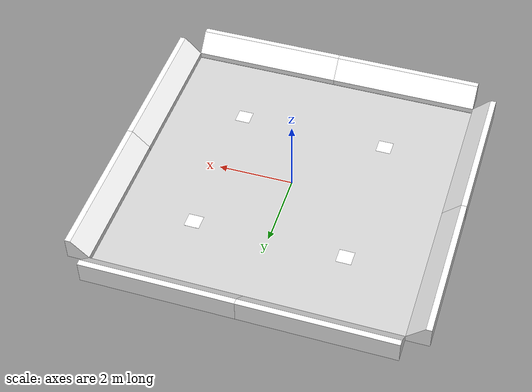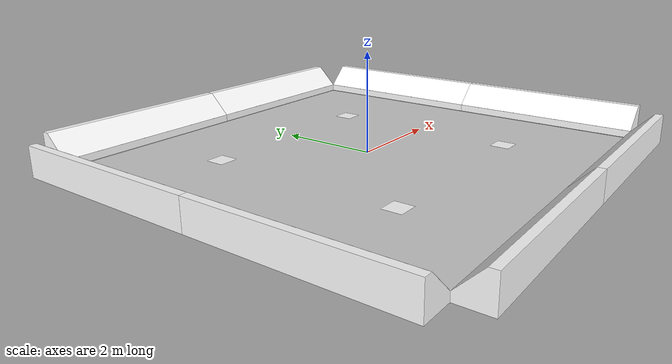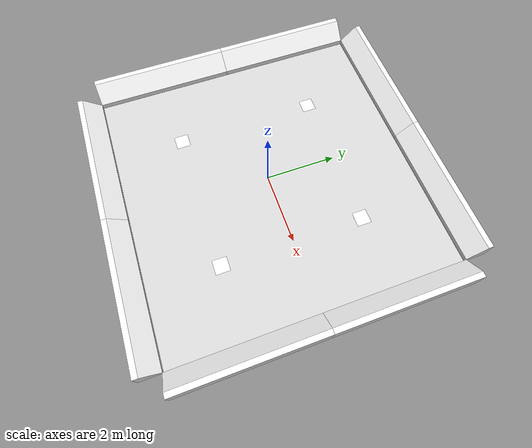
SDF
<sdf version="1.4">
  <world name="default">

    <physics name="1ms" type="ignored">
      <max_step_size>0.001</max_step_size>
      <real_time_factor>1.0</real_time_factor>
    </physics>
    <plugin
      filename="gz-sim-physics-system"
      name="gz::sim::systems::Physics">
    </plugin>
    <plugin
      filename="gz-sim-user-commands-system"
      name="gz::sim::systems::UserCommands">
    </plugin>
    <plugin
      filename="gz-sim-scene-broadcaster-system"
      name="gz::sim::systems::SceneBroadcaster">
    </plugin>

    <plugin
        filename="gz-sim-sensors-system"
        name="gz::sim::systems::Sensors">
        <render_engine>ogre2</render_engine>
    </plugin>

    <scene>
      <ambient>0.4 0.4 0.4 1</ambient>
      <background>0.7 0.7 0.7 1</background>
      <shadows>false</shadows>
    </scene>

    <!-- Arena lights -->
    <include>
    <name>light1</name>
      <uri>model://simple_light</uri>
      <pose>2 2 10 0 0 0</pose>
    </include>

    <include>
    <name>light2</name>
      <uri>model://simple_light</uri>
      <pose>-2 2 10 0 0 0</pose>
    </include>

    <include>
    <name>light3</name>
      <uri>model://simple_light</uri>
      <pose>-2 -2 10 0 0 0</pose>
    </include>

    <include>
    <name>light4</name>
      <uri>model://simple_light</uri>
      <pose>2 -2 10 0 0 0</pose>
    </include>

    <!-- An empty wood plane -->
    <include>
      <uri>model://puzzlebot_base</uri>
    </include>

    <include>
      <uri>model://arena_a_frame</uri>
    </include>

    <include>
      <name>goal_1</name>
      <uri>model://goal_marker_5</uri>
      <pose>-2 -2 0.002 0 0 0</pose>
    </include>

    <include>
      <name>goal_2</name>
      <uri>model://goal_marker_5</uri>
      <pose>2 -2 0.002 0 0 0</pose>
    </include>

    <include>
      <name>goal_3</name>
      <uri>model://goal_marker_5</uri>
      <pose>2 2 0.002 0 0 0</pose>
    </include>

    <include>
      <name>goal_4</name>
      <uri>model://goal_marker_5</uri>
      <pose>-2 2 0.002 0 0 0</pose>
    </include>

    <gui fullscreen='0'>
      <camera name='user_camera'>
        <pose>-8.0 -8.0 10.0 0 0.785 0.785</pose>
        <view_controller>orbit</view_controller>
      </camera>
    </gui>

  </world>
</sdf>

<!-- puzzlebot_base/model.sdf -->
<sdf version="1.9">
    <model name="puzzlebot_base">
        <static>true</static>
        <link name="link">
            <collision name="collision">
                <geometry>
                    <plane>
                        <normal>0 0 1</normal>
                        <size>10.0 10.0</size>
                    </plane>
                </geometry>
                <surface>
                    <contact>
                        <collide_bitmask>0xffff</collide_bitmask>
                    </contact>
                    <friction>
                        <ode>
                            <mu>100</mu>
                            <mu2>50</mu2>
                        </ode>
                    </friction>
                </surface>
            </collision>

            <visual name="puzzlebot_visual">
                <pose>0 0 0.001 0 0 0</pose>
                <cast_shadows>false</cast_shadows>
                <geometry>
                    <plane>
                        <normal>0 0 1</normal>
                        <size>8.0 8.0</size>
                    </plane>
                </geometry>

                <material>
                    <ambient>0.8 0.8 0.8 1</ambient>
                    <diffuse>0.8 0.8 0.8 1</diffuse>
                    <specular>1 0.8 0.8 1</specular>
                    <pbr>
                        <metal>
                        <albedo_map>model://puzzlebot_base/materials/textures/puzzlebot_wood_6.png</albedo_map>
                        <normal_map>model://puzzlebot_base/materials/textures/puzzlebot_wood_6.png</normal_map>
                        </metal>
                    </pbr>
                </material>
            </visual>
        </link>
    </model>
</sdf>

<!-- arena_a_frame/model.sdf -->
<sdf version="1.5">
        <model name="a-frame">
            <static>true</static>

                <link name="right_up">
                    <pose>4.3 2.0 0.0 0 0 0.0</pose>
                    <collision name='right_up_collision'>
                        <pose>0.0 0.0 0.3 0 0 -1.5708</pose>
                            <geometry>
                                <box>
                                    <size>4.0 0.6 0.6</size>
                                </box>
                            </geometry>
                        <max_contacts>10</max_contacts>
                        <surface>
                            <bounce/>
                            <friction>
                            <ode/>
                            </friction>
                            <contact>
                            <ode/>
                            </contact>
                        </surface>
                    </collision>

                    <visual name='right_up_mesh'>
                        <pose>0.0 0.0 0.0 0 0 -1.5708</pose>
                        <geometry>
                        <mesh>
                            <uri>model://arena_a_frame/meshes/MCR2_arena_side.stl</uri>
                        </mesh>
                        </geometry>
                        <material>
                            <ambient>1 1 1 1</ambient>
                            <diffuse>1 1 1 1</diffuse>
                            <specular>1 1 1 1</specular>
                        </material>
                    </visual>

                <visual name='right_up_mcr2_logo'>
                        <pose>-0.07509 0.0 0.3759 0.785398 0.00 -1.5708</pose>
                        <geometry>
                            <plane>
                                    <normal>0 0 1</normal>
                                    <size>4.0 0.636396</size>
                            </plane>
                        </geometry>
                        <material>
                            <ambient>1.0 1.0 1.0 1</ambient>
                            <diffuse>1.0 1.0 1.0 1</diffuse>
                            <specular>1.0 1.0 1.0 1</specular>
                            <pbr>
                                <metal>
                                <albedo_map>model://arena_a_frame/materials/textures/mcr2_banner.png</albedo_map>
                                <normal_map>model://arena_a_frame/materials/textures/mcr2_banner.png</normal_map>
                                </metal>
                            </pbr>
                        </material>
                    </visual>
                </link>

                <link name="right_down">
                    <pose>4.3 -2.0 0.0 0 0 0.0</pose>
                    <collision name='right_down_collision'>
                        <pose>0.0 0.0 0.3 0 0 -1.5708</pose>
                            <geometry>
                                <box>
                                    <size>4.0 0.6 0.6</size>
                                </box>
                            </geometry>
                        <max_contacts>10</max_contacts>
                        <surface>
                            <bounce/>
                            <friction>
                            <ode/>
                            </friction>
                            <contact>
                            <ode/>
                            </contact>
                        </surface>
                    </collision>

                    <visual name='right_down_mesh'>
                        <pose>0.0 0.0 0.0 0 0 -1.5708</pose>
                        <geometry>
                        <mesh>
                            <uri>model://arena_a_frame/meshes/MCR2_arena_side.stl</uri>
                        </mesh>
                        </geometry>
                        <material>
                            <ambient>1 1 1 1</ambient>
                            <diffuse>1 1 1 1</diffuse>
                            <specular>1 1 1 1</specular>
                        </material>
                    </visual>

                <visual name='right_down_mcr2_logo'>
                        <pose>-0.07509 0.0 0.3759 0.785398 0.00 -1.5708</pose>
                        <geometry>
                            <plane>
                                    <normal>0 0 1</normal>
                                    <size>4.0 0.636396</size>
                            </plane>
                        </geometry>
                        <material>
                            <ambient>1.0 1.0 1.0 1</ambient>
                            <diffuse>1.0 1.0 1.0 1</diffuse>
                            <specular>1.0 1.0 1.0 1</specular>
                            <pbr>
                                <metal>
                                <albedo_map>model://arena_a_frame/materials/textures/mcr2_banner.png</albedo_map>
                                <normal_map>model://arena_a_frame/materials/textures/mcr2_banner.png</normal_map>
                                </metal>
                            </pbr>
                        </material>
                    </visual>
                </link>

                <link name="left_up">
                    <pose>-4.3 2.0 0.0 0 0 3.141592654</pose>
                    <collision name='left_up_collision'>
                        <pose>0.0 0.0 0.3 0 0 -1.5708</pose>
                            <geometry>
                                <box>
                                    <size>4.0 0.6 0.6</size>
                                </box>
                            </geometry>
                        <max_contacts>10</max_contacts>
                        <surface>
                            <bounce/>
                            <friction>
                            <ode/>
                            </friction>
                            <contact>
                            <ode/>
                            </contact>
                        </surface>
                    </collision>

                    <visual name='left_up_mesh'>
                        <pose>0.0 0.0 0.0 0 0 -1.5708</pose>
                        <geometry>
                        <mesh>
                            <uri>model://arena_a_frame/meshes/MCR2_arena_side.stl</uri>
                        </mesh>
                        </geometry>
                        <material>
                            <ambient>1 1 1 1</ambient>
                            <diffuse>1 1 1 1</diffuse>
                            <specular>1 1 1 1</specular>
                        </material>
                    </visual>

                <visual name='left_up_mcr2_logo'>
                        <pose>-0.07509 0.0 0.3759 0.785398 0.00 -1.5708</pose>
                        <geometry>
                            <plane>
                                    <normal>0 0 1</normal>
                                    <size>4.0 0.636396</size>
                            </plane>
                        </geometry>
                        <material>
                            <ambient>1.0 1.0 1.0 1</ambient>
                            <diffuse>1.0 1.0 1.0 1</diffuse>
                            <specular>1.0 1.0 1.0 1</specular>
                            <pbr>
                                <metal>
                                <albedo_map>model://arena_a_frame/materials/textures/mcr2_banner.png</albedo_map>
                                <normal_map>model://arena_a_frame/materials/textures/mcr2_banner.png</normal_map>
                                </metal>
                            </pbr>
                        </material>
                    </visual>
                </link>

                <link name="left_down">
                    <pose>-4.3 -2.0 0.0 0 0 3.141592654</pose>
                    <collision name='left_down_collision'>
                        <pose>0.0 0.0 0.3 0 0 -1.5708</pose>
                            <geometry>
                                <box>
                                    <size>4.0 0.6 0.6</size>
                                </box>
                            </geometry>
                        <max_contacts>10</max_contacts>
                        <surface>
                            <bounce/>
                            <friction>
                            <ode/>
                            </friction>
                            <contact>
                            <ode/>
                            </contact>
                        </surface>
                    </collision>

                    <visual name='left_down_mesh'>
                        <pose>0.0 0.0 0.0 0 0 -1.5708</pose>
                        <geometry>
                        <mesh>
                            <uri>model://arena_a_frame/meshes/MCR2_arena_side.stl</uri>
                        </mesh>
                        </geometry>
                        <material>
                            <ambient>1 1 1 1</ambient>
                            <diffuse>1 1 1 1</diffuse>
                            <specular>1 1 1 1</specular>
                        </material>
                    </visual>

                <visual name='left_down_mcr2_logo'>
                        <pose>-0.07509 0.0 0.3759 0.785398 0.00 -1.5708</pose>
                        <geometry>
                            <plane>
                                    <normal>0 0 1</normal>
                                    <size>4.0 0.636396</size>
                            </plane>
                        </geometry>
                        <material>
                            <ambient>1.0 1.0 1.0 1</ambient>
                            <diffuse>1.0 1.0 1.0 1</diffuse>
                            <specular>1.0 1.0 1.0 1</specular>
                            <pbr>
                                <metal>
                                <albedo_map>model://arena_a_frame/materials/textures/mcr2_banner.png</albedo_map>
                                <normal_map>model://arena_a_frame/materials/textures/mcr2_banner.png</normal_map>
                                </metal>
                            </pbr>
                        </material>
                    </visual>
                </link>

                <link name="bottom_right">
                    <pose>2.0 -4.3 0.0 0 0 -1.5708</pose>
                    <collision name='bottom_right_collision'>
                        <pose>0.0 0.0 0.3 0 0 -1.5708</pose>
                            <geometry>
                                <box>
                                    <size>4.0 0.6 0.6</size>
                                </box>
                            </geometry>
                        <max_contacts>10</max_contacts>
                        <surface>
                            <bounce/>
                            <friction>
                            <ode/>
                            </friction>
                            <contact>
                            <ode/>
                            </contact>
                        </surface>
                    </collision>

                    <visual name='bottom_right_mesh'>
                        <pose>0.0 0.0 0.0 0 0 -1.5708</pose>
                        <geometry>
                        <mesh>
                            <uri>model://arena_a_frame/meshes/MCR2_arena_side.stl</uri>
                        </mesh>
                        </geometry>
                        <material>
                            <ambient>1 1 1 1</ambient>
                            <diffuse>1 1 1 1</diffuse>
                            <specular>1 1 1 1</specular>
                        </material>
                    </visual>

                <visual name='bottom_right_mcr2_logo'>
                        <pose>-0.07509 0.0 0.3759 0.785398 0.0 -1.5708</pose>
                        <geometry>
                            <plane>
                                    <normal>0 0 1</normal>
                                    <size>4.0 0.636396</size>
                            </plane>
                        </geometry>
                        <material>
                            <ambient>1.0 1.0 1.0 1</ambient>
                            <diffuse>1.0 1.0 1.0 1</diffuse>
                            <specular>1.0 1.0 1.0 1</specular>
                            <pbr>
                                <metal>
                                <albedo_map>model://arena_a_frame/materials/textures/mcr2_banner.png</albedo_map>
                                <normal_map>model://arena_a_frame/materials/textures/mcr2_banner.png</normal_map>
                                </metal>
                            </pbr>
                        </material>
                    </visual>
                </link>

                <link name="bottom_left">
                    <pose>-2.0 -4.3 0.0 0 0 -1.5708</pose>
                    <collision name='bottom_left_collision'>
                        <pose>0.0 0.0 0.3 0 0 -1.5708</pose>
                            <geometry>
                                <box>
                                    <size>4.0 0.6 0.6</size>
                                </box>
                            </geometry>
                        <max_contacts>10</max_contacts>
                        <surface>
                            <bounce/>
                            <friction>
                            <ode/>
                            </friction>
                            <contact>
                            <ode/>
                            </contact>
                        </surface>
                    </collision>

                    <visual name='bottom_left_mesh'>
                        <pose>0.0 0.0 0.0 0 0 -1.5708</pose>
                        <geometry>
                        <mesh>
                            <uri>model://arena_a_frame/meshes/MCR2_arena_side.stl</uri>
                        </mesh>
                        </geometry>
                        <material>
                            <ambient>1 1 1 1</ambient>
                            <diffuse>1 1 1 1</diffuse>
                            <specular>1 1 1 1</specular>
                        </material>
                    </visual>

                <visual name='bottom_left_mcr2_logo'>
                        <pose>-0.07509 0.0 0.3759 0.785398 0.0 -1.5708</pose>
                        <geometry>
                            <plane>
                                    <normal>0 0 1</normal>
                                    <size>4.0 0.636396</size>
                            </plane>
                        </geometry>
                        <material>
                            <ambient>1.0 1.0 1.0 1</ambient>
                            <diffuse>1.0 1.0 1.0 1</diffuse>
                            <specular>1.0 1.0 1.0 1</specular>
                            <pbr>
                                <metal>
                                <albedo_map>model://arena_a_frame/materials/textures/mcr2_banner.png</albedo_map>
                                <normal_map>model://arena_a_frame/materials/textures/mcr2_banner.png</normal_map>
                                </metal>
                            </pbr>
                        </material>
                    </visual>
                </link>

                <link name="top_right">
                    <pose>2.0 4.3 0.0 0 0 1.5708</pose>
                    <collision name='top_right_collision'>
                        <pose>0.0 0.0 0.3 0 0 -1.5708</pose>
                            <geometry>
                                <box>
                                    <size>4.0 0.6 0.6</size>
                                </box>
                            </geometry>
                        <max_contacts>10</max_contacts>
                        <surface>
                            <bounce/>
                            <friction>
                            <ode/>
                            </friction>
                            <contact>
                            <ode/>
                            </contact>
                        </surface>
                    </collision>

                    <visual name='top_right_mesh'>
                        <pose>0.0 0.0 0.0 0 0 -1.5708</pose>
                        <geometry>
                        <mesh>
                            <uri>model://arena_a_frame/meshes/MCR2_arena_side.stl</uri>
                        </mesh>
                        </geometry>
                        <material>
                            <ambient>1 1 1 1</ambient>
                            <diffuse>1 1 1 1</diffuse>
                            <specular>1 1 1 1</specular>
                        </material>
                    </visual>

                <visual name='top_right_mcr2_logo'>
                        <pose>-0.07509 0.0 0.3759 0.785398 0.0 -1.5708</pose>
                        <geometry>
                            <plane>
                                    <normal>0 0 1</normal>
                                    <size>4.0 0.636396</size>
                            </plane>
                        </geometry>
                        <material>
                            <ambient>1.0 1.0 1.0 1</ambient>
                            <diffuse>1.0 1.0 1.0 1</diffuse>
                            <specular>1.0 1.0 1.0 1</specular>
                            <pbr>
                                <metal>
                                <albedo_map>model://arena_a_frame/materials/textures/mcr2_banner.png</albedo_map>
                                <normal_map>model://arena_a_frame/materials/textures/mcr2_banner.png</normal_map>
                                </metal>
                            </pbr>
                        </material>
                    </visual>
                </link>

                <link name="top_left">
                    <pose>-2.0 4.3 0.0 0 0 1.5708</pose>
                    <collision name='top_left_collision'>
                        <pose>0.0 0.0 0.3 0 0 -1.5708</pose>
                            <geometry>
                                <box>
                                    <size>4.0 0.6 0.6</size>
                                </box>
                            </geometry>
                        <max_contacts>10</max_contacts>
                        <surface>
                            <bounce/>
                            <friction>
                            <ode/>
                            </friction>
                            <contact>
                            <ode/>
                            </contact>
                        </surface>
                    </collision>

                    <visual name='top_left_mesh'>
                        <pose>0.0 0.0 0.0 0 0 -1.5708</pose>
                        <geometry>
                        <mesh>
                            <uri>model://arena_a_frame/meshes/MCR2_arena_side.stl</uri>
                        </mesh>
                        </geometry>
                        <material>
                            <ambient>1 1 1 1</ambient>
                            <diffuse>1 1 1 1</diffuse>
                            <specular>1 1 1 1</specular>
                        </material>
                    </visual>

                <visual name='top_left_mcr2_logo'>
                        <pose>-0.07509 0.0 0.3759 0.785398 0.0 -1.5708</pose>
                        <geometry>
                            <plane>
                                    <normal>0 0 1</normal>
                                    <size>4.0 0.636396</size>
                            </plane>
                        </geometry>
                        <material>
                            <ambient>1.0 1.0 1.0 1</ambient>
                            <diffuse>1.0 1.0 1.0 1</diffuse>
                            <specular>1.0 1.0 1.0 1</specular>
                            <pbr>
                                <metal>
                                <albedo_map>model://arena_a_frame/materials/textures/mcr2_banner.png</albedo_map>
                                <normal_map>model://arena_a_frame/materials/textures/mcr2_banner.png</normal_map>
                                </metal>
                            </pbr>
                        </material>
                    </visual>
                </link>
        </model>
    </sdf>

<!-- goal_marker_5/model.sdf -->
<sdf version="1.5">
        <model name="goal_marker_5">
            <static>true</static>
                <link name="link">
                    <pose>0 0 0 0 0 0</pose>
                    <visual name="visual">
                        <cast_shadows>false</cast_shadows>
                        <geometry>
                            <plane>
                                    <normal>0 0 1</normal>
                                    <size>0.4 0.4</size>
                            </plane>
                        </geometry>
                        <material>
                            <ambient>1 1 1 1</ambient>
                            <diffuse>1 1 1 1</diffuse>
                            <specular>1 1 1 1</specular>
                            <pbr>
                                <metal>
                                <albedo_map>model://goal_marker_5/materials/textures/mcr2_goal_5.png</albedo_map>
                                <normal_map>model://goal_marker_5/materials/textures/mcr2_goal_5.png</normal_map>
                                </metal>
                            </pbr>
                        </material>
                    </visual>
                </link>
        </model>
    </sdf>
